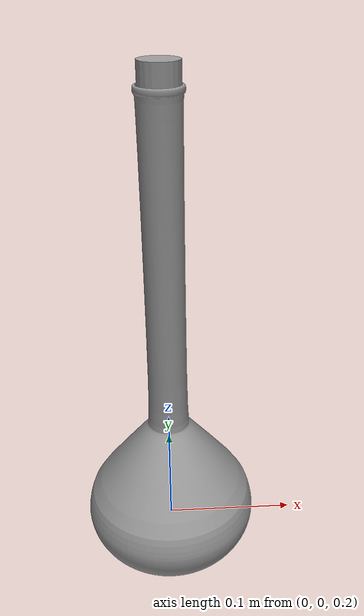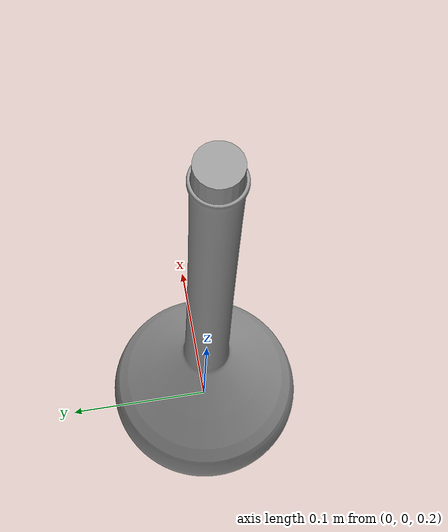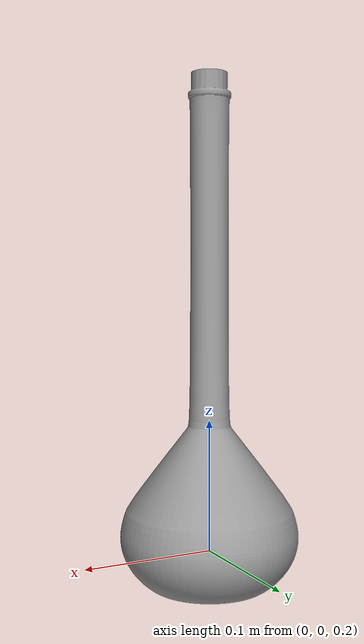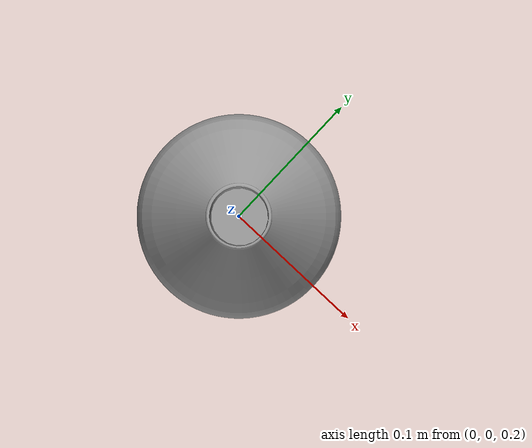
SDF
<?xml version='1.0'?>
<sdf version='1.7'>
  <model name='volumetric_model'>
  <pose>0 0 0.17 0 0 0</pose> <!-- Adjust pose -->

    <!-- Beaker Definition -->
    <link name='link_2'>
      <inertial>
        <mass>1.0</mass>
        <inertia>
          <ixx>5000</ixx> <!-- Increased inertia to resist oscillation -->
          <ixy>0.00</ixy>
          <ixz>0.00</ixz>
          <iyy>5000</iyy> <!-- Increased inertia to resist oscillation -->
          <iyz>0.00</iyz>
          <izx>0.00</izx>
          <izy>0.00</izy>
          <izz>5000</izz> <!-- Increased inertia to resist oscillation -->
        </inertia>
      </inertial>
      <visual name='visual'>
        <geometry>
          <mesh>
            <uri>model://volumetric_flask_model/meshes/flask_1.stl</uri>
            <scale>0.25 0.25 0.25</scale> <!-- Converted to millimetres -->
          </mesh>
        </geometry>
        <material>
          <script>
            <uri>file://media/materials/scripts/gazebo.material</uri>
            <name>Gazebo/Grey</name>
          </script>
        </material>
        <transparency>0</transparency>
        <cast_shadows>1</cast_shadows>
      </visual>
      <collision name='collision'>
        <geometry>
          <mesh>
            <uri>model://volumetric_flask_model/meshes/flask_1.stl</uri>
            <scale>0.25 0.25 0.25</scale> <!-- Converted to millimetres -->
          </mesh>
        </geometry>
      </collision>
    </link>
  </model>
</sdf>
